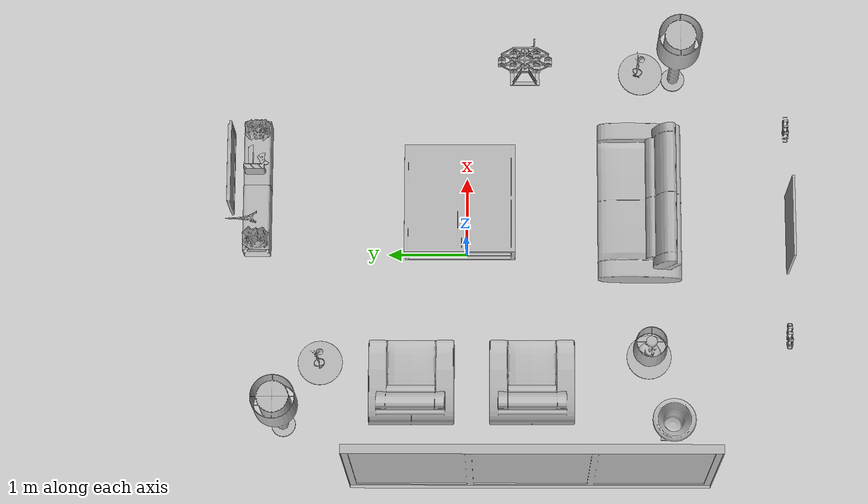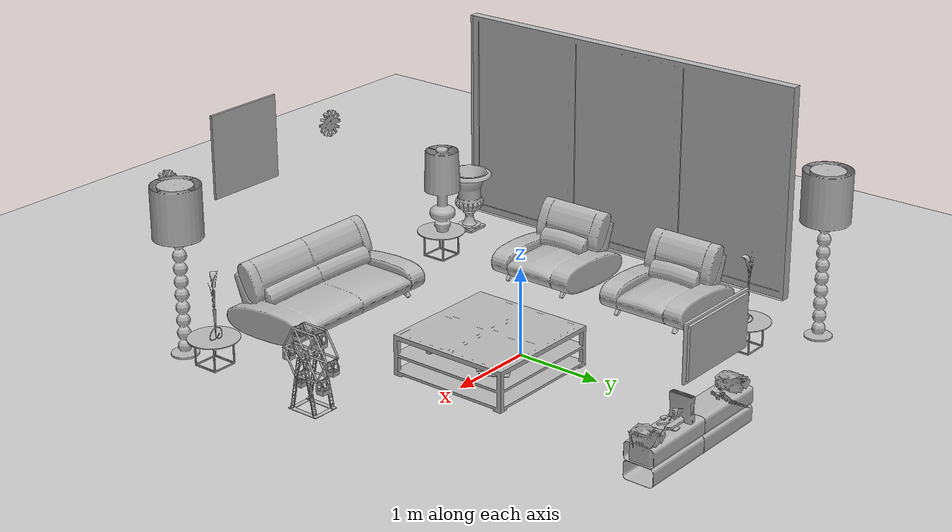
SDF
<sdf version="1.4">
 <world name="default">
  <light name="sun" type="directional">
   <pose>0 0 10 0 -0 0</pose>
   <diffuse>0.8 0.8 0.8 1</diffuse>
   <specular>0.2 0.2 0.2 1</specular>
   <attenuation>
    <range>1000</range>
    <constant>0.9</constant>
    <linear>0.01</linear>
    <quadratic>0.001</quadratic>
   </attenuation>
   <direction>-0.5 0.1 -0.9</direction>
  </light>
  <model name="ground_plane">
   <static>1</static>
   <link name="link">
    <collision name="collision">
     <geometry><plane><normal>0 0 1</normal><size>100 100</size></plane></geometry>
     <surface><friction><ode><mu>100</mu><mu2>50</mu2></ode></friction></surface>
    </collision>
    <visual name="visual">
     <cast_shadows>0</cast_shadows>
     <geometry><plane><normal>0 0 1</normal><size>100 100</size></plane></geometry>
     <material>
      <script><uri>file://media/materials/scripts/gazebo.material</uri><name>Gazebo/Grey</name></script>
     </material>
    </visual>
    <velocity_decay><linear>0</linear><angular>0</angular></velocity_decay>
   </link>
  </model>
  <physics type="ode">
   <max_step_size>0.001</max_step_size>
   <real_time_factor>1</real_time_factor>
   <real_time_update_rate>1000</real_time_update_rate>
   <gravity>0 0 -9.8</gravity>
  </physics>
  <scene><ambient>0.4 0.4 0.4 1</ambient><background>0.7 0.7 0.7 1</background><shadows>1</shadows></scene>
  <spherical_coordinates>
   <surface_model>EARTH_WGS84</surface_model>
   <latitude_deg>0</latitude_deg>
   <longitude_deg>0</longitude_deg>
   <elevation>0</elevation>
   <heading_deg>0</heading_deg>
  </spherical_coordinates>
  <model name="754_0">
   <pose>-2.95108 -0.799779 0.025888 0 0 -0.001442</pose>
   <static>1</static>
   <link name="link">
    <collision name="collision"><geometry><box><size>0.115 4.5 2</size></box></geometry></collision>
    <visual name="visual"><geometry><mesh><uri>model://754/754.dae</uri></mesh></geometry></visual>
    <velocity_decay><linear>0</linear><angular>0</angular></velocity_decay>
   </link>
  </model>
  <model name="781_0">
   <pose>0.02863 -3.99277 0.95387 0 -0 1.5708</pose>
   <static>1</static>
   <link name="link">
    <collision name="collision"><geometry><box><size>0.03 1 2</size></box></geometry></collision>
    <visual name="visual"><geometry><mesh><uri>model://781/781.dae</uri></mesh></geometry></visual>
    <velocity_decay><linear>0</linear><angular>0</angular></velocity_decay>
   </link>
  </model>
  <model name="s__2435_0">
   <pose>-1.71137 0.688751 0.09 0 -0 0</pose>
   <static>1</static>
   <link name="link">
    <collision name="collision"><geometry><box><size>1.07 1.07 2</size></box></geometry></collision>
    <visual name="visual"><geometry><mesh><uri>model://s__2435/s__2435.dae</uri></mesh></geometry></visual>
    <velocity_decay><linear>0</linear><angular>0</angular></velocity_decay>
   </link>
  </model>
  <model name="s__2435_1">
   <pose>-1.71137 -0.823247 0.09 0 -0 0</pose>
   <static>1</static>
   <link name="link">
    <collision name="collision"><geometry><box><size>1.07 1.07 2</size></box></geometry></collision>
    <visual name="visual"><geometry><mesh><uri>model://s__2435/s__2435.dae</uri></mesh></geometry></visual>
    <velocity_decay><linear>0</linear><angular>0</angular></velocity_decay>
   </link>
  </model>
  <model name="s__2441_0">
   <pose>0.616628 -2.19125 0.09 0 -0 1.5708</pose>
   <static>1</static>
   <link name="link">
    <collision name="collision"><geometry><box><size>1.07 2.03 2</size></box></geometry></collision>
    <visual name="visual"><geometry><mesh><uri>model://s__2441/s__2441.dae</uri></mesh></geometry></visual>
    <velocity_decay><linear>0</linear><angular>0</angular></velocity_decay>
   </link>
  </model>
  <model name="s__1989_0">
   <pose>0.376627 2.66141 0.09 0 -0 1.5708</pose>
   <static>1</static>
   <link name="link">
    <collision name="collision"><geometry><box><size>0.34 0.84 2</size></box></geometry></collision>
    <visual name="visual"><geometry><mesh><uri>model://s__1989/s__1989.dae</uri></mesh></geometry></visual>
    <velocity_decay><linear>0</linear><angular>0</angular></velocity_decay>
   </link>
  </model>
  <model name="s__1989_1">
   <pose>1.2195 2.66124 0.09 0 0 -1.5708</pose>
   <static>1</static>
   <link name="link">
    <collision name="collision"><geometry><box><size>0.34 0.84 2</size></box></geometry></collision>
    <visual name="visual"><geometry><mesh><uri>model://s__1989/s__1989.dae</uri></mesh></geometry></visual>
    <velocity_decay><linear>0</linear><angular>0</angular></velocity_decay>
   </link>
  </model>
  <model name="s__1837_0">
   <pose>-1.48337 1.82875 0.09 0 -0 0</pose>
   <static>1</static>
   <link name="link">
    <collision name="collision"><geometry><box><size>0.56 0.56 2</size></box></geometry></collision>
    <visual name="visual"><geometry><mesh><uri>model://s__1837/s__1837.dae</uri></mesh></geometry></visual>
    <velocity_decay><linear>0</linear><angular>0</angular></velocity_decay>
   </link>
  </model>
  <model name="s__1837_1">
   <pose>2.29663 -2.21525 0.09 0 -0 0</pose>
   <static>1</static>
   <link name="link">
    <collision name="collision"><geometry><box><size>0.56 0.56 2</size></box></geometry></collision>
    <visual name="visual"><geometry><mesh><uri>model://s__1837/s__1837.dae</uri></mesh></geometry></visual>
    <velocity_decay><linear>0</linear><angular>0</angular></velocity_decay>
   </link>
  </model>
  <model name="s__1837_2">
   <pose>-1.41137 -2.28725 0.09 0 -0 0</pose>
   <static>1</static>
   <link name="link">
    <collision name="collision"><geometry><box><size>0.56 0.56 2</size></box></geometry></collision>
    <visual name="visual"><geometry><mesh><uri>model://s__1837/s__1837.dae</uri></mesh></geometry></visual>
    <velocity_decay><linear>0</linear><angular>0</angular></velocity_decay>
   </link>
  </model>
  <model name="s__1669_0">
   <pose>0.616628 0.088751 0.09 0 -0 0</pose>
   <static>1</static>
   <link name="link">
    <collision name="collision"><geometry><box><size>1.4 1.4 2</size></box></geometry></collision>
    <visual name="visual"><geometry><mesh><uri>model://s__1669/s__1669.dae</uri></mesh></geometry></visual>
    <velocity_decay><linear>0</linear><angular>0</angular></velocity_decay>
   </link>
  </model>
  <model name="216_0">
   <pose>0.778585 2.90667 1.05675 0 0 -1.5708</pose>
   <static>1</static>
   <link name="link">
    <collision name="collision"><geometry><box><size>0.05 1.05992 2</size></box></geometry></collision>
    <visual name="visual"><geometry><mesh><uri>model://216/216.dae</uri></mesh></geometry></visual>
    <velocity_decay><linear>0</linear><angular>0</angular></velocity_decay>
   </link>
  </model>
  <model name="651_0">
   <pose>1.12202 2.66044 0.497609 0 0 -1.5708</pose>
   <static>1</static>
   <link name="link">
    <collision name="collision"><geometry><box><size>0.300008 0.370002 2</size></box></geometry></collision>
    <visual name="visual"><geometry><mesh><uri>model://651/651.dae</uri></mesh></geometry></visual>
    <velocity_decay><linear>0</linear><angular>0</angular></velocity_decay>
   </link>
  </model>
  <model name="s__1866_0">
   <pose>2.44063 -0.739248 0.09 0 -0 0</pose>
   <static>1</static>
   <link name="link">
    <collision name="collision"><geometry><box><size>0.4 0.68 2</size></box></geometry></collision>
    <visual name="visual"><geometry><mesh><uri>model://s__1866/s__1866.dae</uri></mesh></geometry></visual>
    <velocity_decay><linear>0</linear><angular>0</angular></velocity_decay>
   </link>
  </model>
  <model name="s__1853_0">
   <pose>0.364625 0.55675 0.39 0 0 -0.506145</pose>
   <static>1</static>
   <link name="link">
    <collision name="collision"><geometry><box><size>0.08 0.08 2</size></box></geometry></collision>
    <visual name="visual"><geometry><mesh><uri>model://s__1853/s__1853.dae</uri></mesh></geometry></visual>
    <velocity_decay><linear>0</linear><angular>0</angular></velocity_decay>
   </link>
  </model>
  <model name="s__1845_0">
   <pose>0.361008 2.65479 0.497609 0 -0 0</pose>
   <static>1</static>
   <link name="link">
    <collision name="collision"><geometry><box><size>0.16 0.16 2</size></box></geometry></collision>
    <visual name="visual"><geometry><mesh><uri>model://s__1845/s__1845.dae</uri></mesh></geometry></visual>
    <velocity_decay><linear>0</linear><angular>0</angular></velocity_decay>
   </link>
  </model>
  <model name="s__1856_0">
   <pose>0.364629 0.088751 0.39 0 -0 0</pose>
   <static>1</static>
   <link name="link">
    <collision name="collision"><geometry><box><size>0.1 0.1 2</size></box></geometry></collision>
    <visual name="visual"><geometry><mesh><uri>model://s__1856/s__1856.dae</uri></mesh></geometry></visual>
    <velocity_decay><linear>0</linear><angular>0</angular></velocity_decay>
   </link>
  </model>
  <model name="s__1857_0">
   <pose>1.18063 -0.23525 0.390012 0 -0 3.10669</pose>
   <static>1</static>
   <link name="link">
    <collision name="collision"><geometry><box><size>0.04 0.190523 2</size></box></geometry></collision>
    <visual name="visual"><geometry><mesh><uri>model://s__1857/s__1857.dae</uri></mesh></geometry></visual>
    <velocity_decay><linear>0</linear><angular>0</angular></velocity_decay>
   </link>
  </model>
  <model name="s__2365_0">
   <pose>1.27033 -3.95774 1.21 0 -0 1.5708</pose>
   <static>1</static>
   <link name="link">
    <collision name="collision"><geometry><box><size>0.07 0.32 2</size></box></geometry></collision>
    <visual name="visual"><geometry><mesh><uri>model://s__2365/s__2365.dae</uri></mesh></geometry></visual>
    <velocity_decay><linear>0</linear><angular>0</angular></velocity_decay>
   </link>
  </model>
  <model name="s__2365_1">
   <pose>-1.35137 -3.95565 1.21 0 -0 1.5708</pose>
   <static>1</static>
   <link name="link">
    <collision name="collision"><geometry><box><size>0.07 0.32 2</size></box></geometry></collision>
    <visual name="visual"><geometry><mesh><uri>model://s__2365/s__2365.dae</uri></mesh></geometry></visual>
    <velocity_decay><linear>0</linear><angular>0</angular></velocity_decay>
   </link>
  </model>
  <model name="s__1799_0">
   <pose>-2.27537 -2.57525 0.09 0 -0 0</pose>
   <static>1</static>
   <link name="link">
    <collision name="collision"><geometry><box><size>0.54 0.54 2</size></box></geometry></collision>
    <visual name="visual"><geometry><mesh><uri>model://s__1799/s__1799.dae</uri></mesh></geometry></visual>
    <velocity_decay><linear>0</linear><angular>0</angular></velocity_decay>
   </link>
  </model>
  <model name="s__1802_0">
   <pose>-1.49537 1.82875 0.4 0 -0 0</pose>
   <static>1</static>
   <link name="link">
    <collision name="collision"><geometry><box><size>0.13 0.16 2</size></box></geometry></collision>
    <visual name="visual"><geometry><mesh><uri>model://s__1802/s__1802.dae</uri></mesh></geometry></visual>
    <velocity_decay><linear>0</linear><angular>0</angular></velocity_decay>
   </link>
  </model>
  <model name="s__1816_0">
   <pose>0.436627 -0.475246 0.39 0 0 -1.5708</pose>
   <static>1</static>
   <link name="link">
    <collision name="collision"><geometry><box><size>0.24 0.17 2</size></box></geometry></collision>
    <visual name="visual"><geometry><mesh><uri>model://s__1816/s__1816.dae</uri></mesh></geometry></visual>
    <velocity_decay><linear>0</linear><angular>0</angular></velocity_decay>
   </link>
  </model>
  <model name="s__1814_0">
   <pose>0.028626 -0.067246 0.39 0 0 -1.5708</pose>
   <static>1</static>
   <link name="link">
    <collision name="collision"><geometry><box><size>0.14 0.07 2</size></box></geometry></collision>
    <visual name="visual"><geometry><mesh><uri>model://s__1814/s__1814.dae</uri></mesh></geometry></visual>
    <velocity_decay><linear>0</linear><angular>0</angular></velocity_decay>
   </link>
  </model>
  <model name="s__1813_0">
   <pose>1.07262 0.484753 0.392877 0 0 -1.0472</pose>
   <static>1</static>
   <link name="link">
    <collision name="collision"><geometry><box><size>0.379975 0.329873 2</size></box></geometry></collision>
    <visual name="visual"><geometry><mesh><uri>model://s__1813/s__1813.dae</uri></mesh></geometry></visual>
    <velocity_decay><linear>0</linear><angular>0</angular></velocity_decay>
   </link>
  </model>
  <model name="s__1819_0">
   <pose>0.79663 -0.23525 0.39 0 0 -0.401426</pose>
   <static>1</static>
   <link name="link">
    <collision name="collision"><geometry><box><size>0.07 0.06 2</size></box></geometry></collision>
    <visual name="visual"><geometry><mesh><uri>model://s__1819/s__1819.dae</uri></mesh></geometry></visual>
    <velocity_decay><linear>0</linear><angular>0</angular></velocity_decay>
   </link>
  </model>
  <model name="s__1174_0">
   <pose>-2.21537 2.29675 0.09 0 -0 0</pose>
   <static>1</static>
   <link name="link">
    <collision name="collision"><geometry><box><size>0.54 0.54 2</size></box></geometry></collision>
    <visual name="visual"><geometry><mesh><uri>model://s__1174/s__1174.dae</uri></mesh></geometry></visual>
    <velocity_decay><linear>0</linear><angular>0</angular></velocity_decay>
   </link>
  </model>
  <model name="s__1174_1">
   <pose>2.30863 -2.64725 0.09 0 -0 0</pose>
   <static>1</static>
   <link name="link">
    <collision name="collision"><geometry><box><size>0.54 0.54 2</size></box></geometry></collision>
    <visual name="visual"><geometry><mesh><uri>model://s__1174/s__1174.dae</uri></mesh></geometry></visual>
    <velocity_decay><linear>0</linear><angular>0</angular></velocity_decay>
   </link>
  </model>
  <model name="s__1802_1">
   <pose>2.29663 -2.17925 0.4 0 0 -1.0472</pose>
   <static>1</static>
   <link name="link">
    <collision name="collision"><geometry><box><size>0.13 0.16 2</size></box></geometry></collision>
    <visual name="visual"><geometry><mesh><uri>model://s__1802/s__1802.dae</uri></mesh></geometry></visual>
    <velocity_decay><linear>0</linear><angular>0</angular></velocity_decay>
   </link>
  </model>
  <model name="s__1983_0">
   <pose>-1.42337 -2.27525 0.399427 0 -0 0</pose>
   <static>1</static>
   <link name="link">
    <collision name="collision"><geometry><box><size>0.42 0.42 2</size></box></geometry></collision>
    <visual name="visual"><geometry><mesh><uri>model://s__1983/s__1983.dae</uri></mesh></geometry></visual>
    <velocity_decay><linear>0</linear><angular>0</angular></velocity_decay>
   </link>
  </model>
 </world>
</sdf>
